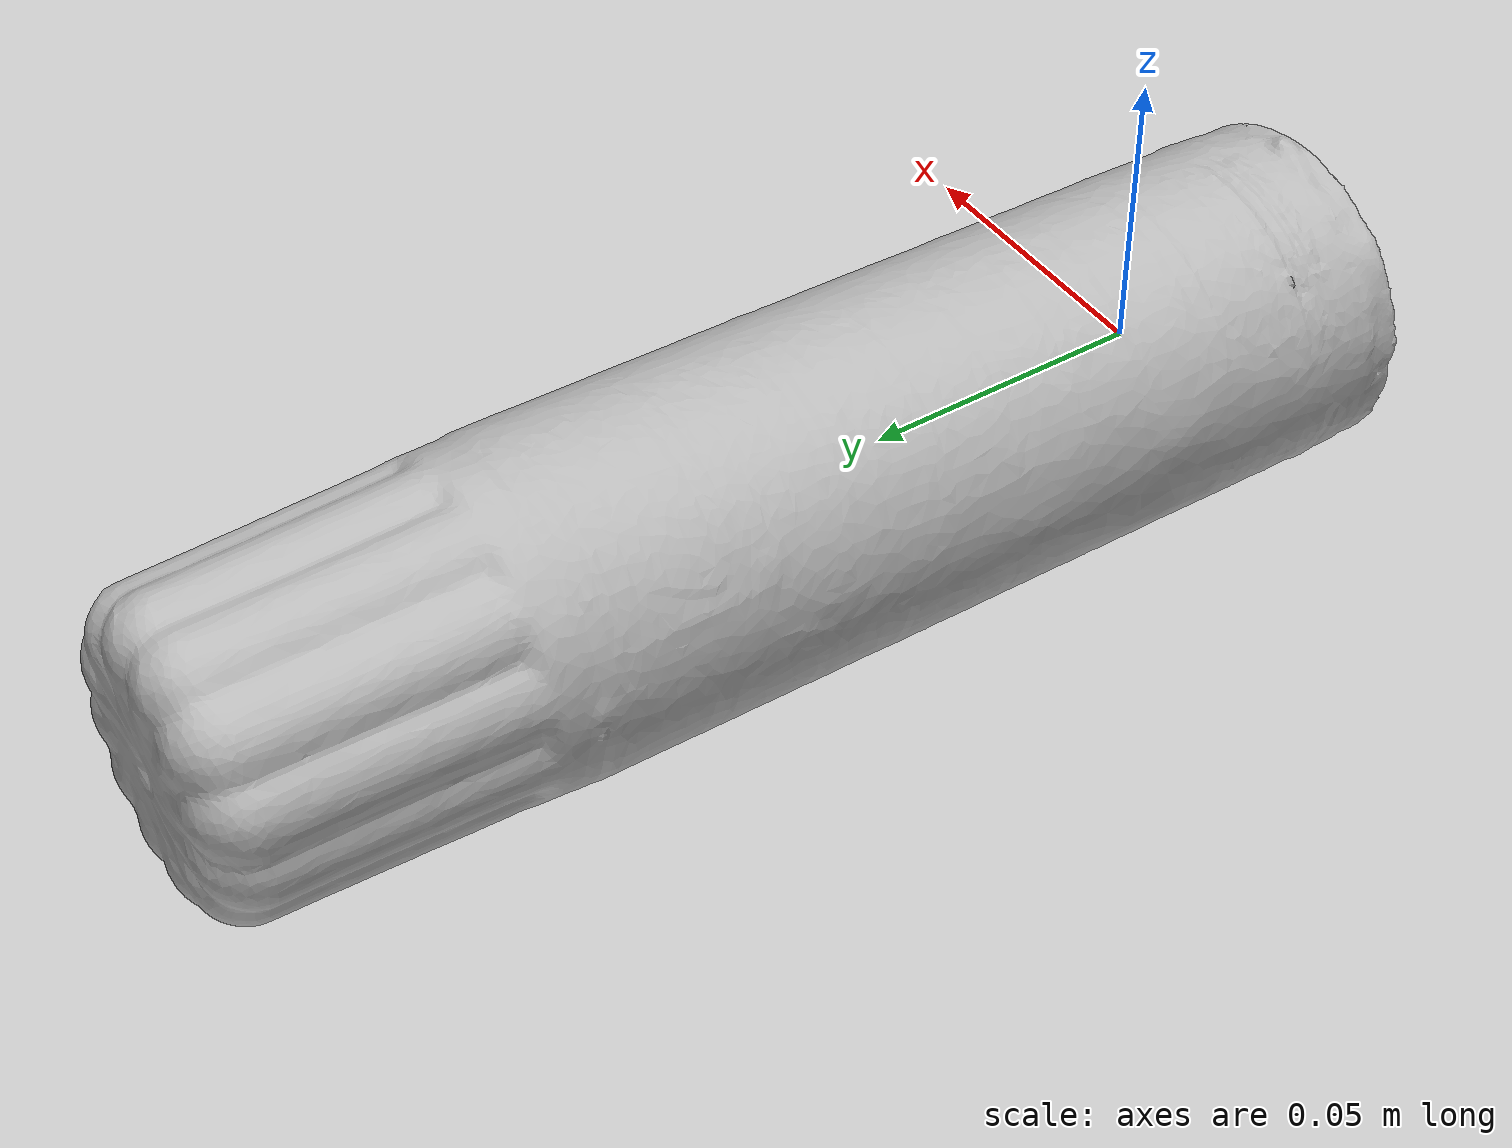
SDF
<?xml version='1.0'?>
<sdf version="1.4">
  <model name="WhippedCream2">
    <static>false</static>
    <link name="link">
      <inertial>
        <pose>-0.0008782532137381564 0.06974309593690975 -0.0015872763244469544 -1.5875571804269983 0.7729779841197831 3.130259416521387</pose>
        <mass>0.05666740219214306</mass>
        <inertia>
          <ixx>0.0002262832814891158</ixx>
          <ixy>6.271289238609794e-21</ixy>
          <ixz>1.2255797595004561e-21</ixz>
          <iyy>0.00022621878573830613</iyy>
          <iyz>7.372466153884666e-21</iyz>
          <izz>2.36092127021088e-05</izz>
        </inertia>
      </inertial>
      <collision name="collision">
        <geometry>
          <mesh>
            <!-- Use a downsampled mesh for collisions -->
            <uri>model:///WhippedCream2/WhippedCream2_250_collision.obj</uri>
	        </mesh>
        </geometry>
        <surface>
      </surface>
      </collision>
      <visual name="visual">
        <geometry>
          <mesh>
            <uri>model:///WhippedCream2/WhippedCream2_25k_tex.obj</uri>
	        </mesh>
        </geometry>
        <material>
          <script>
            <uri>model:///WhippedCream2/WhippedCream2.material</uri>
            <name>WhippedCream2</name>
          </script>
        </material>
      </visual>
    </link>
  </model>
</sdf>
